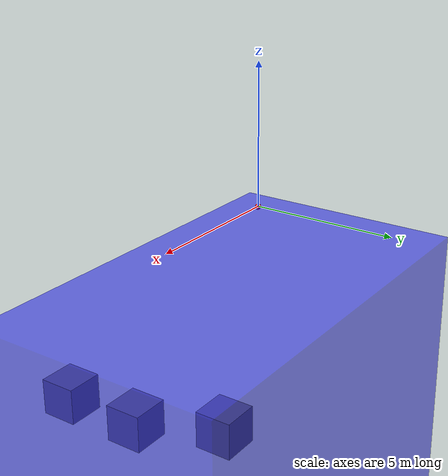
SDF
<sdf version="1.10">
 <world name="wamv_world">
  <physics name="1ms" type="ode">
   <max_step_size>0.001</max_step_size>
   <real_time_factor>1</real_time_factor>
   <real_time_update_rate>1000</real_time_update_rate>
  </physics>
  <plugin name="gz::sim::systems::Physics" filename="gz-sim-physics-system"/>
  <plugin name="gz::sim::systems::UserCommands" filename="gz-sim-user-commands-system"/>
  <plugin name="gz::sim::systems::Buoyancy" filename="gz-sim-buoyancy-system">
   <graded_buoyancy>
    <default_density>1000</default_density>
    <density_change><above_depth>0</above_depth><density>1</density></density_change>
   </graded_buoyancy>
   <enable>wamv</enable>
   <enable>my_lrauv_modified</enable>
   <enable>box_neutral_buoyancy</enable>
   <enable>box_neutral_buoyancy_1</enable>
   <enable>box_neutral_buoyancy_2</enable>
   <enable>Concave_Obstacle</enable>
  </plugin>
  <plugin name="gz::sim::systems::Imu" filename="gz-sim-imu-system"/>
  <plugin name="gz::sim::systems::Magnetometer" filename="gz-sim-magnetometer-system"/>
  <plugin name="gz::sim::systems::ForceTorque" filename="gz-sim-forcetorque-system"/>
  <plugin name="gz::sim::systems::SceneBroadcaster" filename="gz-sim-scene-broadcaster-system"/>
  <plugin name="gz::sim::systems::Contact" filename="gz-sim-contact-system"/>
  <plugin name="gz::sim::systems::NavSat" filename="gz-sim-navsat-system"/>
  <plugin name="gz::sim::systems::AirPressure" filename="gz-sim-air-pressure-system"/>
  <plugin name="gz::sim::systems::Sensors" filename="gz-sim-sensors-system">
   <render_engine>ogre2</render_engine>
  </plugin>
  <spherical_coordinates>
   <surface_model>EARTH_WGS84</surface_model>
   <world_frame_orientation>ENU</world_frame_orientation>
   <latitude_deg>42.35821841111111</latitude_deg>
   <longitude_deg>-71.047923555555499</longitude_deg>
   <elevation>0</elevation>
   <heading_deg>0</heading_deg>
  </spherical_coordinates>
  <atmosphere type="adiabatic"/>
  <scene>
   <ambient>0.400000006 0.400000006 0.400000006 1</ambient>
   <background>0.699999988 0.699999988 0.699999988 1</background>
   <shadows>true</shadows>
  </scene>
  <gravity>0 0 -9.8000000000000007</gravity>
  <magnetic_field>5.5644999999999998e-06 2.2875799999999999e-05 -4.2388400000000002e-05</magnetic_field>
  <model name="water_plane">
   <static>true</static>
   <link name="link">
    <visual name="water_plane">
     <geometry><box><size>1000 1000 100</size><normal>0 0 1</normal></box></geometry>
     <material><ambient>0 0 1 0.5</ambient><diffuse>0 0 1 0.5</diffuse><specular>0 0 1 0.5</specular></material>
    </visual>
    <pose>0 0 -50 0 0 0</pose>
    <inertial>
     <mass>1</mass>
     <inertia><ixx>1</ixx><ixy>0</ixy><ixz>0</ixz><iyy>1</iyy><iyz>0</iyz><izz>1</izz></inertia>
    </inertial>
   </link>
  </model>
  <model name="ground_plane">
   <static>true</static>
   <link name="link">
    <collision name="collision">
     <geometry><plane><normal>0 0 1</normal><size>1000 1000</size></plane></geometry>
     <surface><friction><ode><mu>100</mu><mu2>50</mu2></ode></friction></surface>
    </collision>
    <visual name="visual">
     <cast_shadows>false</cast_shadows>
     <geometry><plane><normal>0 0 1</normal><size>100 100</size></plane></geometry>
     <material>
      <ambient>0.300000012 0.300000012 0.300000012 1</ambient>
      <diffuse>0.699999988 0.699999988 0.699999988 1</diffuse>
      <specular>0.00999999978 0.00999999978 0.00999999978 1</specular>
     </material>
    </visual>
    <inertial>
     <mass>1</mass>
     <inertia><ixx>1</ixx><ixy>0</ixy><ixz>0</ixz><iyy>1</iyy><iyz>0</iyz><izz>1</izz></inertia>
    </inertial>
   </link>
   <pose>0 0 -100 0 0 0</pose>
  </model>
  <model name="world_origin_marker">
   <static>true</static>
   <link name="marker_link">
    <visual name="visual">
     <geometry><sphere><radius>0.10000000000000001</radius></sphere></geometry>
     <material><ambient>1 0 0 1</ambient></material>
    </visual>
    <inertial>
     <mass>1</mass>
     <inertia><ixx>1</ixx><ixy>0</ixy><ixz>0</ixz><iyy>1</iyy><iyz>0</iyz><izz>1</izz></inertia>
    </inertial>
   </link>
   <pose>0 0 0 0 0 -0.16809223025261213</pose>
  </model>
  <model name="box_neutral_buoyancy">
   <pose>10 0.8 -2 0 0 0</pose>
   <link name="body">
    <inertial>
     <mass>1000</mass>
     <pose>0 0 0.10000000000000001 0 0 0</pose>
     <inertia>
      <ixx>86.289078218599656</ixx>
      <ixy>0</ixy>
      <ixz>0</ixz>
      <iyy>86.289078218599656</iyy>
      <iyz>0</iyz>
      <izz>5.0265482457436708</izz>
     </inertia>
    </inertial>
    <visual name="body_visual">
     <geometry><box><size>1 1 1</size></box></geometry>
     <material>
      <ambient>0.5 0.5 0.5 1</ambient>
      <diffuse>0.5 0.5 0.5 1</diffuse>
      <specular>0.5 0.5 0.5 1</specular>
     </material>
    </visual>
    <collision name="body_collision">
     <geometry><box><size>1 1 1</size></box></geometry>
     <laser_retro>1.0</laser_retro>
    </collision>
   </link>
   <static>false</static>
  </model>
  <model name="box_neutral_buoyancy_1">
   <pose>10 3 -2 0 0 0</pose>
   <link name="body">
    <inertial>
     <mass>1000</mass>
     <pose>0 0 0.10000000000000001 0 0 0</pose>
     <inertia>
      <ixx>86.289078218599656</ixx>
      <ixy>0</ixy>
      <ixz>0</ixz>
      <iyy>86.289078218599656</iyy>
      <iyz>0</iyz>
      <izz>5.0265482457436708</izz>
     </inertia>
    </inertial>
    <visual name="body_visual">
     <geometry><box><size>1 1 1</size></box></geometry>
     <material>
      <ambient>0.5 0.5 0.5 1</ambient>
      <diffuse>0.5 0.5 0.5 1</diffuse>
      <specular>0.5 0.5 0.5 1</specular>
     </material>
    </visual>
    <collision name="body_collision">
     <geometry><box><size>1 1 1</size></box></geometry>
     <laser_retro>1.0</laser_retro>
    </collision>
   </link>
   <static>false</static>
  </model>
  <model name="box_neutral_buoyancy_2">
   <pose>9 5 -2 0 0 0</pose>
   <link name="body">
    <inertial>
     <mass>1000</mass>
     <pose>0 0 0.10000000000000001 0 0 0</pose>
     <inertia>
      <ixx>86.289078218599656</ixx>
      <ixy>0</ixy>
      <ixz>0</ixz>
      <iyy>86.289078218599656</iyy>
      <iyz>0</iyz>
      <izz>5.0265482457436708</izz>
     </inertia>
    </inertial>
    <visual name="body_visual">
     <geometry><box><size>1 1 1</size></box></geometry>
     <material>
      <ambient>0.5 0.5 0.5 1</ambient>
      <diffuse>0.5 0.5 0.5 1</diffuse>
      <specular>0.5 0.5 0.5 1</specular>
     </material>
    </visual>
    <collision name="body_collision">
     <geometry><box><size>1 1 1</size></box></geometry>
     <laser_retro>1.0</laser_retro>
    </collision>
   </link>
   <static>false</static>
  </model>
  <light name="sun" type="directional">
   <pose>0 0 10000 0 0 0</pose>
   <cast_shadows>false</cast_shadows>
   <intensity>1</intensity>
   <direction>-0.5 0.10000000000000001 -0.90000000000000002</direction>
   <diffuse>0.800000012 0.800000012 0.800000012 1</diffuse>
   <specular>0.200000003 0.200000003 0.200000003 1</specular>
   <attenuation>
    <range>1000</range>
    <linear>0.0099999997764825821</linear>
    <constant>0.89999997615814209</constant>
    <quadratic>0.0010000000474974513</quadratic>
   </attenuation>
   <spot><inner_angle>0</inner_angle><outer_angle>0</outer_angle><falloff>0</falloff></spot>
  </light>
 </world>
</sdf>
